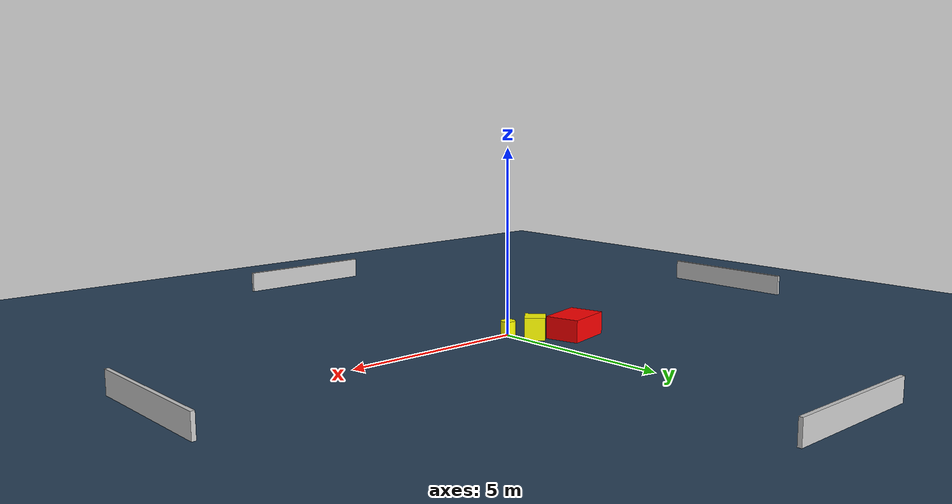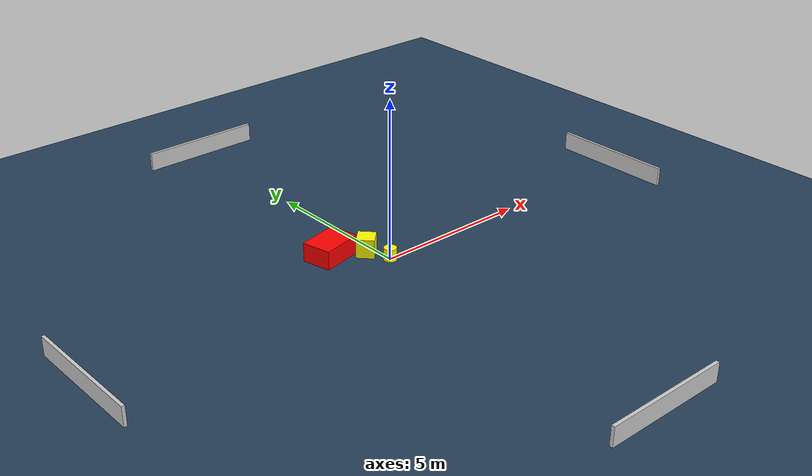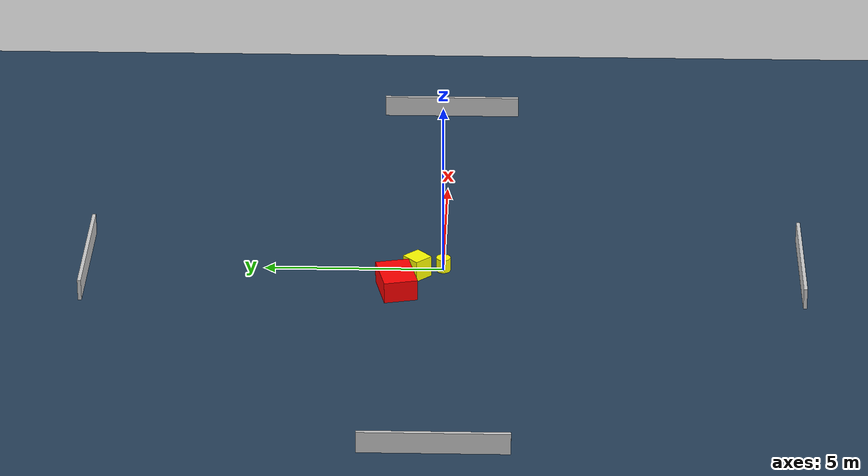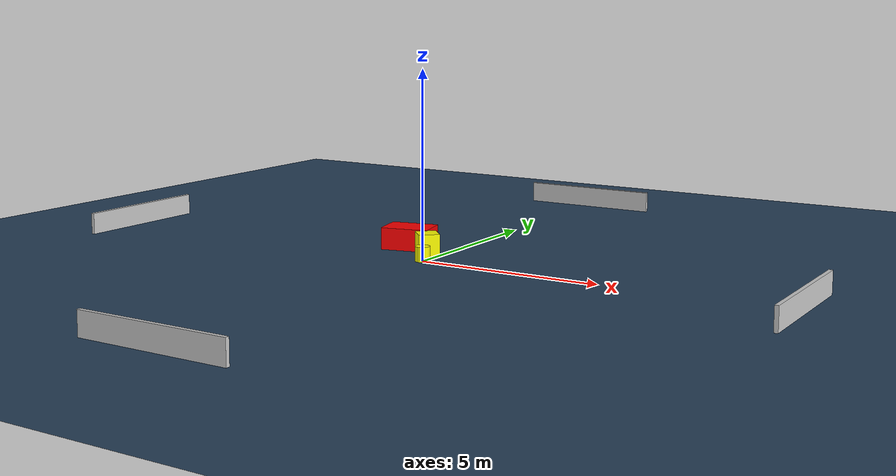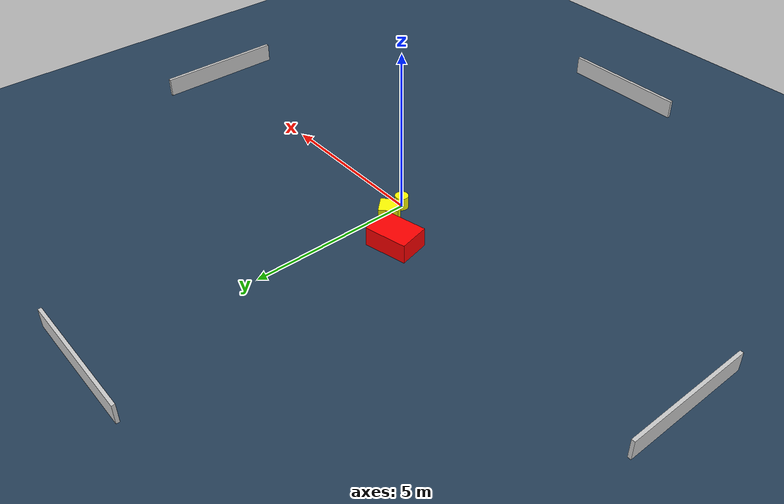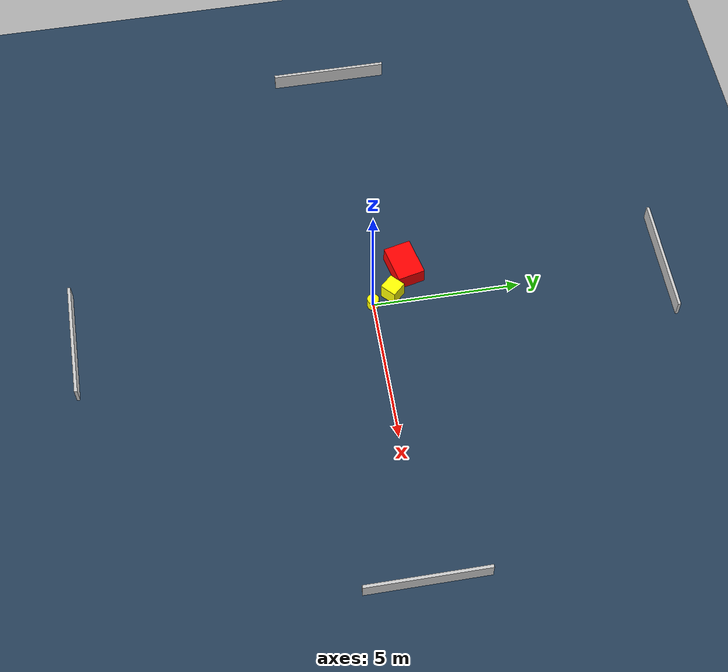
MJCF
<?xml version="1.0" ?>
<mujoco model="generated_environment">
  <option timestep="0.01" integrator="RK4" cone="elliptic"/>
  <default>
    <geom density="1"/>
  </default>
  <asset>
    <texture builtin="gradient" height="3072" name="skybox" rgb1="0.3 0.5 0.7" rgb2="0 0 0" type="skybox" width="512"/>
    <texture builtin="checker" height="300" name="groundplane" rgb1="0.2 0.3 0.4" rgb2="0.1 0.2 0.3" type="2d" width="300"/>
    <material name="groundplane" reflectance="0.2" texrepeat="5 5" texture="groundplane"/>
  </asset>
  <worldbody>
    <light dir="0 0 -1" directional="true" pos="0 0 1.5"/>
    <geom condim="3" friction="0.5 0.005 0.001" material="groundplane" name="floor" pos="0 0 0" size="0 0 0.05" type="plane"/>
    <body name="walls">
      <geom name="wall_1" condim="4" pos="-10.0 0.0 0.3" rgba="0.800000011920929 0.800000011920929 0.800000011920929 1.0" size="0.05 2.0 0.3" type="box"/>
      <geom name="wall_2" condim="4" pos="10.0 0.0 0.3" rgba="0.800000011920929 0.800000011920929 0.800000011920929 1.0" size="0.05 2.0 0.3" type="box"/>
      <geom name="wall_3" condim="4" pos="0.0 -10.0 0.3" rgba="0.800000011920929 0.800000011920929 0.800000011920929 1.0" size="2.0 0.05 0.3" type="box"/>
      <geom name="wall_4" condim="4" pos="0.0 10.0 0.3" rgba="0.800000011920929 0.800000011920929 0.800000011920929 1.0" size="2.0 0.05 0.3" type="box"/>
    </body>
    <body name="robot">
      <joint name="joint_x" type="slide" pos="0 0 0" axis="1 0 0"/>
      <joint name="joint_y" type="slide" pos="0 0 0" axis="0 1 0"/>
      <geom name="robot" type="cylinder" pos="0.0 0.0 0.2" size="0.2 0.2 0.0" mass="5.0" friction="1.0 0.005 0.0001" condim="4" rgba="1.0 1.0 0.0 1.0"/>
    </body>
    <body name="obstacle_1_movable">
      <geom name="obstacle_1_movable" condim="4" pos="-0.30999081311043236 0.7196812699293667 0.3" euler="0 0 223.11876080650813" friction="0.0 0.005 0.001" rgba="1.0 1.0 0.0 1.0" size="0.2851782937171493 0.27782658126721144 0.3" type="box" mass="0.1"/>
      <joint type="free"/>
    </body>
    <body name="obstacle_2_static">
      <geom name="obstacle_2_static" condim="4" pos="-1.2329123792282772 1.2707816559509642 0.3" euler="0 0 12.83889828907126" friction="0.0 0.005 0.001" rgba="1.0 0.0 0.0 1.0" size="0.6571232954311903 0.47094668368463416 0.3" type="box"/>
    </body>
  </worldbody>
  <actuator>
    <motor name="actuator_x" joint="joint_x" gear="1" ctrlrange="-1 1"/>
    <motor name="actuator_y" joint="joint_y" gear="1" ctrlrange="-1 1"/>
  </actuator>
</mujoco>
